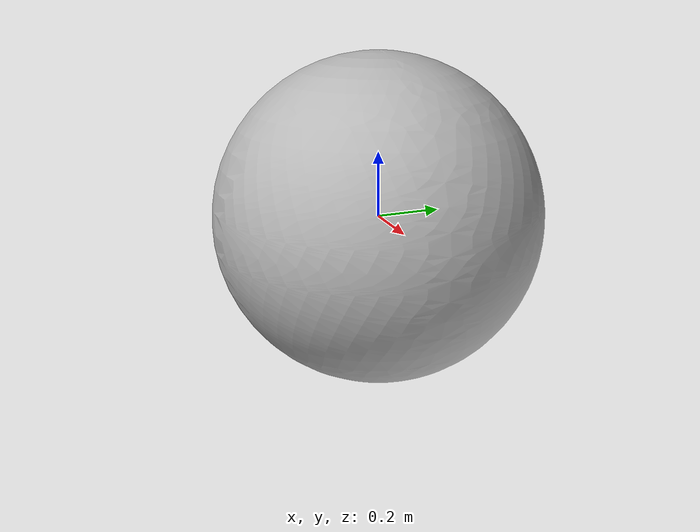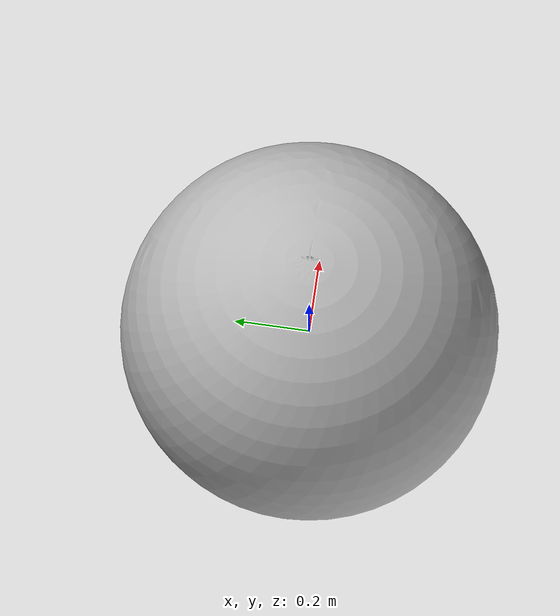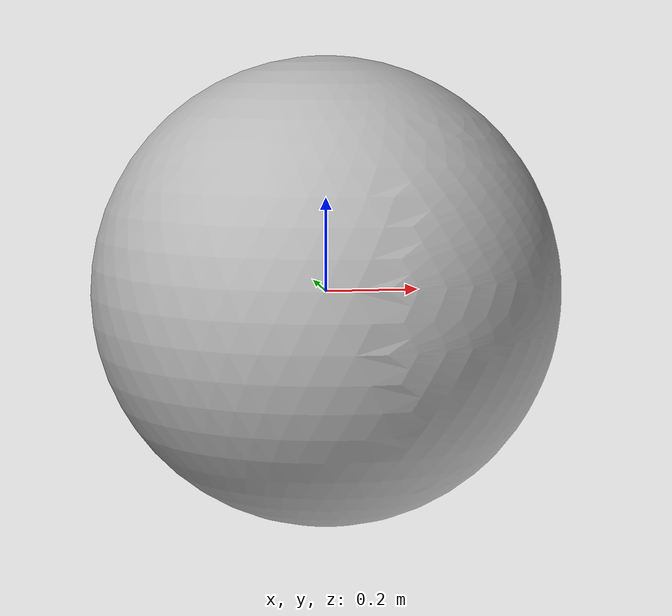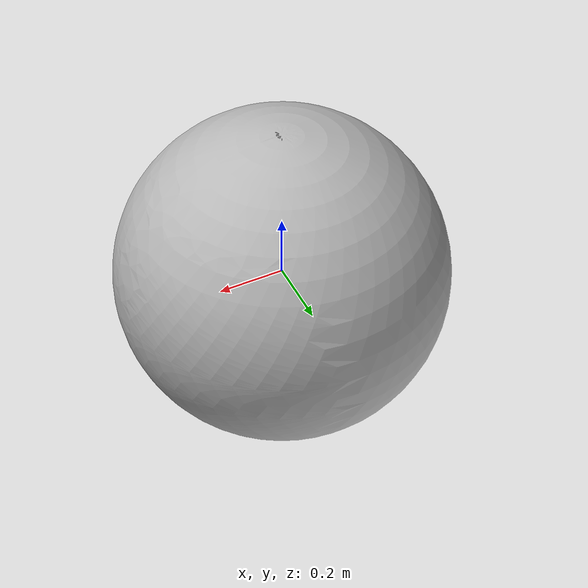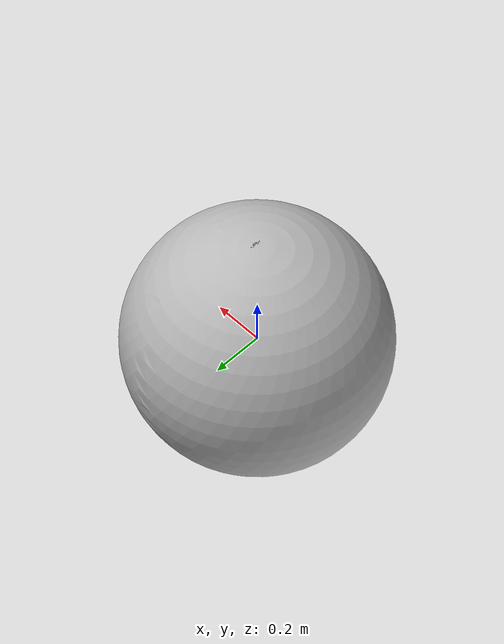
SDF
<?xml version="1.0" ?>
<sdf version="1.5">
  <model name="tower">
    <static>true</static>

   <link name="link">
      <collision name="collision">
        <geometry>
          <mesh>
            <uri>model://ball_1m/mesh/bola_dia_1m.dae</uri>
          </mesh>
        </geometry>
      </collision>
      <visual name="visual">
        <geometry>
          <mesh>
            <uri>model://ball_1m/mesh/bola_dia_1m.dae</uri>
          </mesh>
        </geometry>
      </visual>
    </link>
  </model>
</sdf>
